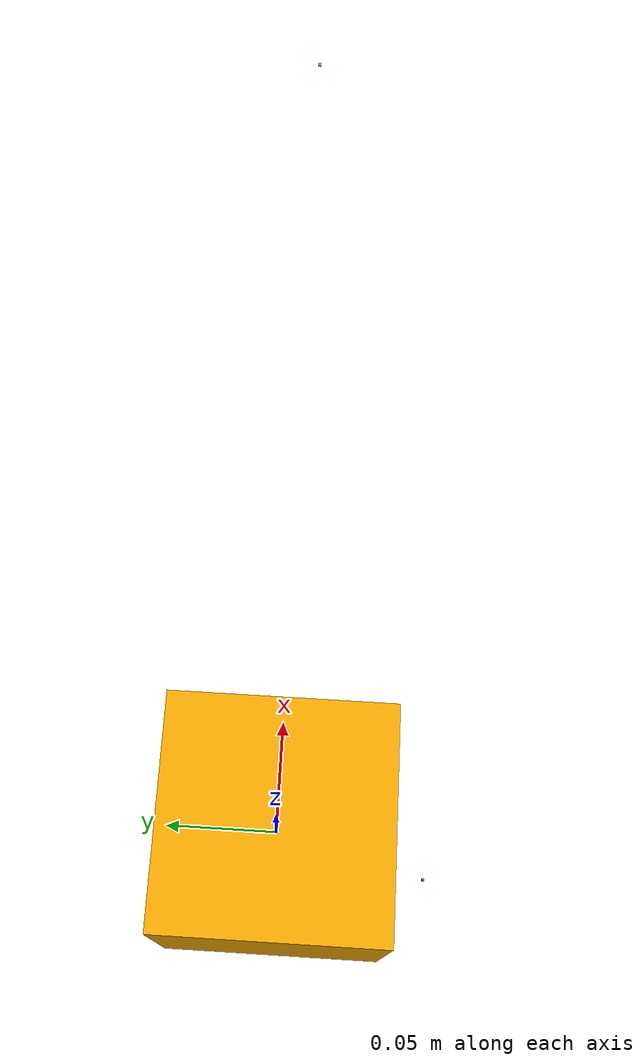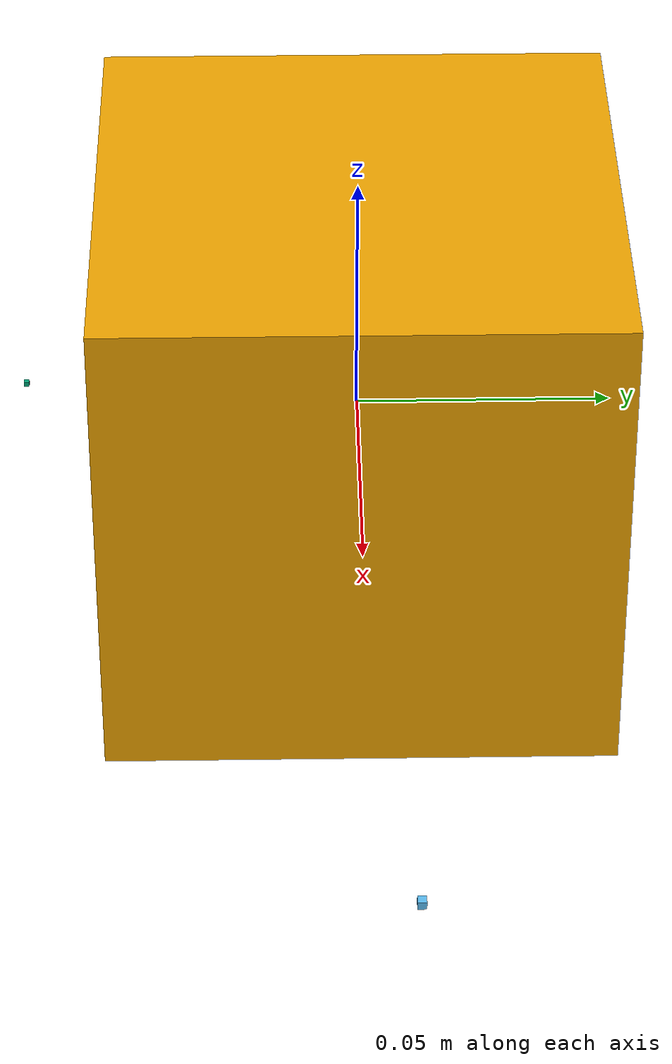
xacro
<?xml version="1.0"?>

<robot name="go1" xmlns:xacro="http://www.ros.org/wiki/xacro">

    <xacro:arg name="DEBUG" default="false"/>

    <!-- Debug mode will hung up the robot, use "true" or "false" to switch it. -->
    <xacro:if value="$(arg DEBUG)">
        <link name="world"/>
        <joint name="base_static_joint" type="fixed">
            <origin rpy="0 0 0" xyz="0 0 0"/>
            <parent link="world"/>
            <child link="base_link"/>
        </joint>
    </xacro:if>

    <link name="base_link">
        <visual>
            <origin rpy="0 0 0" xyz="0 0 0"/>
            <geometry>
                <box size="0.1 0.1 0.1"/>
            </geometry>

        </visual>

    </link>

    <link name="rslidar">
        <visual>
            <origin rpy="0 0 0" xyz="0 0 0"/>
            <geometry>
                <box size="0.001 0.001 0.001"/>
            </geometry>
        </visual>
    </link>

    <joint name="lidar_joint" type="fixed">
        <origin rpy="0 0 0" xyz="0.3 0 0.15"/>
        <parent link="base_link"/>
        <child link="rslidar"/>
    </joint>

<joint name="imu_joint" type="fixed">
        <parent link="base_link"/>
        <child link="imu_link"/>
        <origin rpy="0 0 0" xyz="-0.01592 -0.06659 -0.00617"/>
    </joint>

    <link name="imu_link">
        <inertial>
            <mass value="0.001"/>
            <origin rpy="0 0 0" xyz="0 0 0"/>
            <inertia ixx="0.0001" ixy="0" ixz="0" iyy="0.0001" iyz="0" izz="0.0001"/>
        </inertial>
        <visual>
            <origin rpy="0 0 0" xyz="0 0 0"/>
            <geometry>
                <box size="0.001 0.001 0.001"/>
            </geometry>
        </visual>
        <collision>
            <origin rpy="0 0 0" xyz="0 0 0"/>
            <geometry>
                <box size=".001 .001 .001"/>
            </geometry>
        </collision>
    </link>

</robot>
